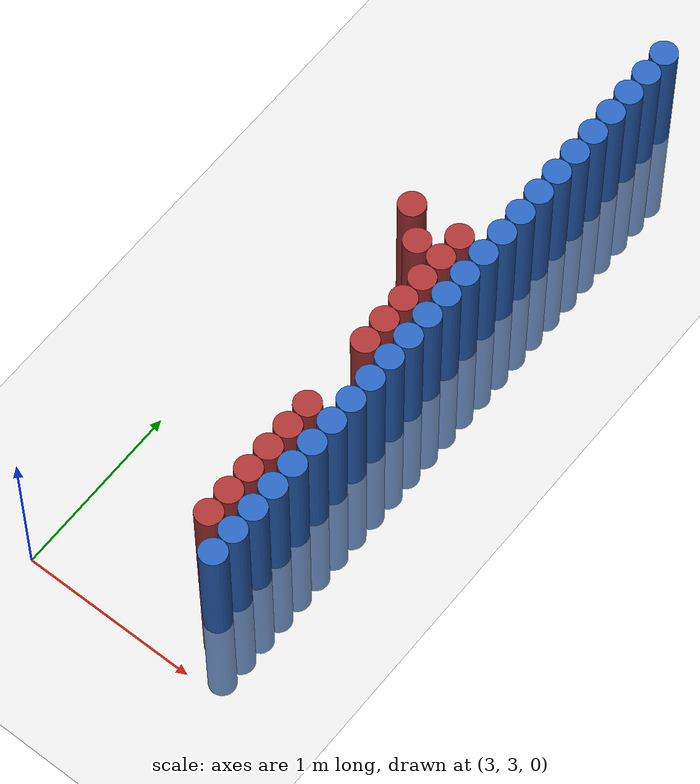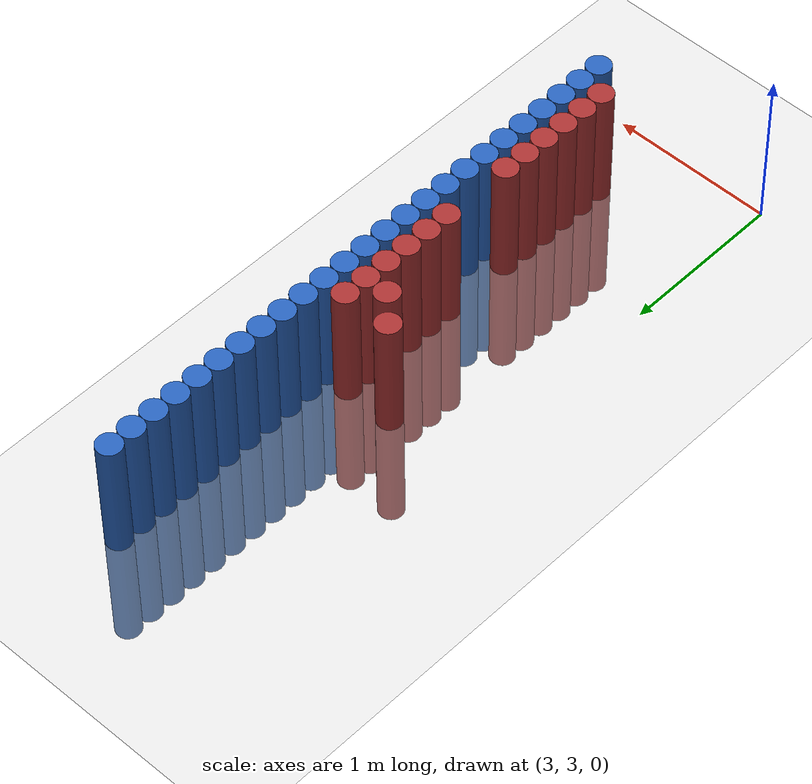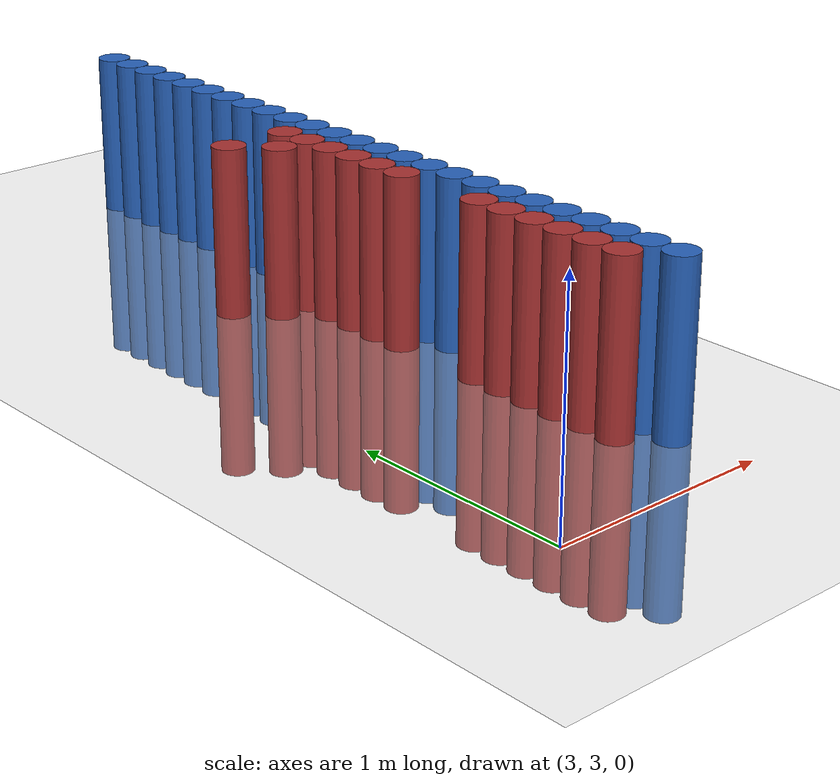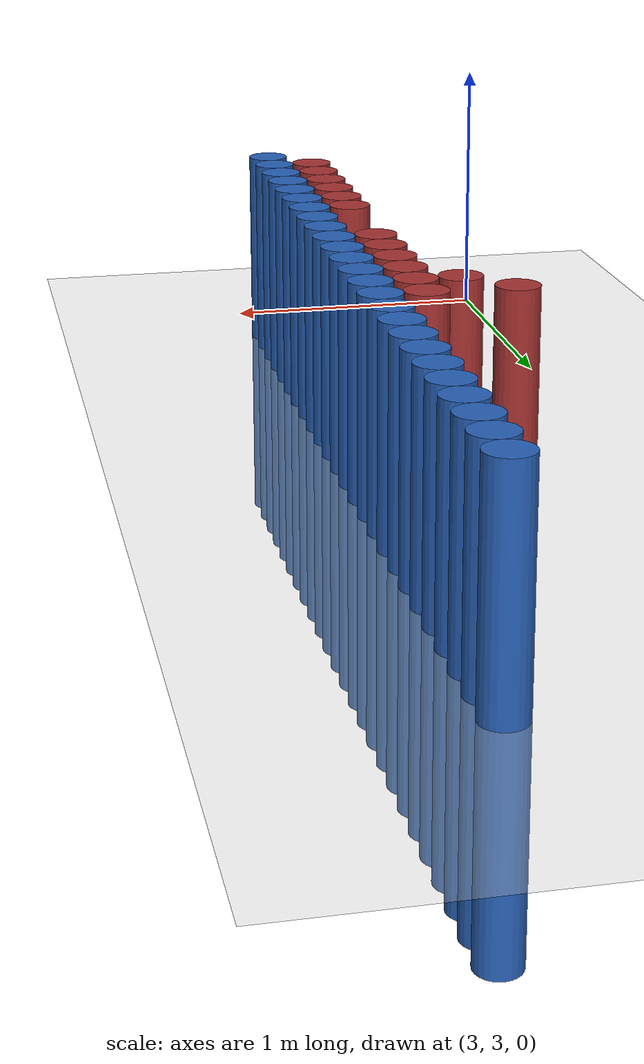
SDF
<sdf version="1.6">
 <world name="default">
  <model name="ground_plane">
   <static>1</static>
   <link name="link">
    <collision name="collision">
     <geometry><plane><normal>0 0 1</normal><size>100 100</size></plane></geometry>
     <surface><friction><ode><mu>100</mu><mu2>50</mu2></ode></friction></surface>
    </collision>
    <visual name="visual">
     <cast_shadows>0</cast_shadows>
     <geometry><plane><normal>0 0 1</normal><size>100 100</size></plane></geometry>
     <material>
      <script><uri>file://media/materials/scripts/gazebo.material</uri><name>Gazebo/Grey</name></script>
     </material>
    </visual>
   </link>
  </model>
  <model name="unit_cylinder_158">
   <static>1</static>
   <pose>3.925000 3.325000 0.000000 0.000000 0.000000 0.000000</pose>
   <link name="link">
    <inertial>
     <mass>1</mass>
     <inertia><ixx>0.145833</ixx><ixy>0</ixy><ixz>0</ixz><iyy>0.145833</iyy><iyz>0</iyz><izz>0.125</izz></inertia>
    </inertial>
    <collision name="collision">
     <geometry><cylinder><radius>0.075000</radius><length>1.5</length></cylinder></geometry>
    </collision>
    <visual name="visual">
     <geometry><cylinder><radius>0.075000</radius><length>1.5</length></cylinder></geometry>
     <material>
      <ambient>0.152000 0.379000 0.720000 1</ambient>
      <diffuse>0.152000 0.379000 0.720000 1</diffuse>
     </material>
     <material>
      <script><name>Gazebo/Grey</name><uri>file://media/materials/scripts/gazebo.material</uri></script>
     </material>
    </visual>
   </link>
  </model>
  <model name="unit_cylinder_160">
   <static>1</static>
   <pose>3.925000 3.475000 0.000000 0.000000 0.000000 0.000000</pose>
   <link name="link">
    <inertial>
     <mass>1</mass>
     <inertia><ixx>0.145833</ixx><ixy>0</ixy><ixz>0</ixz><iyy>0.145833</iyy><iyz>0</iyz><izz>0.125</izz></inertia>
    </inertial>
    <collision name="collision">
     <geometry><cylinder><radius>0.075000</radius><length>1.5</length></cylinder></geometry>
    </collision>
    <visual name="visual">
     <geometry><cylinder><radius>0.075000</radius><length>1.5</length></cylinder></geometry>
     <material>
      <ambient>0.152000 0.379000 0.720000 1</ambient>
      <diffuse>0.152000 0.379000 0.720000 1</diffuse>
     </material>
     <material>
      <script><name>Gazebo/Grey</name><uri>file://media/materials/scripts/gazebo.material</uri></script>
     </material>
    </visual>
   </link>
  </model>
  <model name="unit_cylinder_162">
   <static>1</static>
   <pose>3.925000 3.625000 0.000000 0.000000 0.000000 0.000000</pose>
   <link name="link">
    <inertial>
     <mass>1</mass>
     <inertia><ixx>0.145833</ixx><ixy>0</ixy><ixz>0</ixz><iyy>0.145833</iyy><iyz>0</iyz><izz>0.125</izz></inertia>
    </inertial>
    <collision name="collision">
     <geometry><cylinder><radius>0.075000</radius><length>1.5</length></cylinder></geometry>
    </collision>
    <visual name="visual">
     <geometry><cylinder><radius>0.075000</radius><length>1.5</length></cylinder></geometry>
     <material>
      <ambient>0.152000 0.379000 0.720000 1</ambient>
      <diffuse>0.152000 0.379000 0.720000 1</diffuse>
     </material>
     <material>
      <script><name>Gazebo/Grey</name><uri>file://media/materials/scripts/gazebo.material</uri></script>
     </material>
    </visual>
   </link>
  </model>
  <model name="unit_cylinder_164">
   <static>1</static>
   <pose>3.925000 3.775000 0.000000 0.000000 0.000000 0.000000</pose>
   <link name="link">
    <inertial>
     <mass>1</mass>
     <inertia><ixx>0.145833</ixx><ixy>0</ixy><ixz>0</ixz><iyy>0.145833</iyy><iyz>0</iyz><izz>0.125</izz></inertia>
    </inertial>
    <collision name="collision">
     <geometry><cylinder><radius>0.075000</radius><length>1.5</length></cylinder></geometry>
    </collision>
    <visual name="visual">
     <geometry><cylinder><radius>0.075000</radius><length>1.5</length></cylinder></geometry>
     <material>
      <ambient>0.152000 0.379000 0.720000 1</ambient>
      <diffuse>0.152000 0.379000 0.720000 1</diffuse>
     </material>
     <material>
      <script><name>Gazebo/Grey</name><uri>file://media/materials/scripts/gazebo.material</uri></script>
     </material>
    </visual>
   </link>
  </model>
  <model name="unit_cylinder_166">
   <static>1</static>
   <pose>3.925000 3.925000 0.000000 0.000000 0.000000 0.000000</pose>
   <link name="link">
    <inertial>
     <mass>1</mass>
     <inertia><ixx>0.145833</ixx><ixy>0</ixy><ixz>0</ixz><iyy>0.145833</iyy><iyz>0</iyz><izz>0.125</izz></inertia>
    </inertial>
    <collision name="collision">
     <geometry><cylinder><radius>0.075000</radius><length>1.5</length></cylinder></geometry>
    </collision>
    <visual name="visual">
     <geometry><cylinder><radius>0.075000</radius><length>1.5</length></cylinder></geometry>
     <material>
      <ambient>0.152000 0.379000 0.720000 1</ambient>
      <diffuse>0.152000 0.379000 0.720000 1</diffuse>
     </material>
     <material>
      <script><name>Gazebo/Grey</name><uri>file://media/materials/scripts/gazebo.material</uri></script>
     </material>
    </visual>
   </link>
  </model>
  <model name="unit_cylinder_168">
   <static>1</static>
   <pose>3.925000 4.075000 0.000000 0.000000 0.000000 0.000000</pose>
   <link name="link">
    <inertial>
     <mass>1</mass>
     <inertia><ixx>0.145833</ixx><ixy>0</ixy><ixz>0</ixz><iyy>0.145833</iyy><iyz>0</iyz><izz>0.125</izz></inertia>
    </inertial>
    <collision name="collision">
     <geometry><cylinder><radius>0.075000</radius><length>1.5</length></cylinder></geometry>
    </collision>
    <visual name="visual">
     <geometry><cylinder><radius>0.075000</radius><length>1.5</length></cylinder></geometry>
     <material>
      <ambient>0.152000 0.379000 0.720000 1</ambient>
      <diffuse>0.152000 0.379000 0.720000 1</diffuse>
     </material>
     <material>
      <script><name>Gazebo/Grey</name><uri>file://media/materials/scripts/gazebo.material</uri></script>
     </material>
    </visual>
   </link>
  </model>
  <model name="unit_cylinder_170">
   <static>1</static>
   <pose>3.925000 4.225000 0.000000 0.000000 0.000000 0.000000</pose>
   <link name="link">
    <inertial>
     <mass>1</mass>
     <inertia><ixx>0.145833</ixx><ixy>0</ixy><ixz>0</ixz><iyy>0.145833</iyy><iyz>0</iyz><izz>0.125</izz></inertia>
    </inertial>
    <collision name="collision">
     <geometry><cylinder><radius>0.075000</radius><length>1.5</length></cylinder></geometry>
    </collision>
    <visual name="visual">
     <geometry><cylinder><radius>0.075000</radius><length>1.5</length></cylinder></geometry>
     <material>
      <ambient>0.152000 0.379000 0.720000 1</ambient>
      <diffuse>0.152000 0.379000 0.720000 1</diffuse>
     </material>
     <material>
      <script><name>Gazebo/Grey</name><uri>file://media/materials/scripts/gazebo.material</uri></script>
     </material>
    </visual>
   </link>
  </model>
  <model name="unit_cylinder_172">
   <static>1</static>
   <pose>3.925000 4.375000 0.000000 0.000000 0.000000 0.000000</pose>
   <link name="link">
    <inertial>
     <mass>1</mass>
     <inertia><ixx>0.145833</ixx><ixy>0</ixy><ixz>0</ixz><iyy>0.145833</iyy><iyz>0</iyz><izz>0.125</izz></inertia>
    </inertial>
    <collision name="collision">
     <geometry><cylinder><radius>0.075000</radius><length>1.5</length></cylinder></geometry>
    </collision>
    <visual name="visual">
     <geometry><cylinder><radius>0.075000</radius><length>1.5</length></cylinder></geometry>
     <material>
      <ambient>0.152000 0.379000 0.720000 1</ambient>
      <diffuse>0.152000 0.379000 0.720000 1</diffuse>
     </material>
     <material>
      <script><name>Gazebo/Grey</name><uri>file://media/materials/scripts/gazebo.material</uri></script>
     </material>
    </visual>
   </link>
  </model>
  <model name="unit_cylinder_174">
   <static>1</static>
   <pose>3.925000 4.525000 0.000000 0.000000 0.000000 0.000000</pose>
   <link name="link">
    <inertial>
     <mass>1</mass>
     <inertia><ixx>0.145833</ixx><ixy>0</ixy><ixz>0</ixz><iyy>0.145833</iyy><iyz>0</iyz><izz>0.125</izz></inertia>
    </inertial>
    <collision name="collision">
     <geometry><cylinder><radius>0.075000</radius><length>1.5</length></cylinder></geometry>
    </collision>
    <visual name="visual">
     <geometry><cylinder><radius>0.075000</radius><length>1.5</length></cylinder></geometry>
     <material>
      <ambient>0.152000 0.379000 0.720000 1</ambient>
      <diffuse>0.152000 0.379000 0.720000 1</diffuse>
     </material>
     <material>
      <script><name>Gazebo/Grey</name><uri>file://media/materials/scripts/gazebo.material</uri></script>
     </material>
    </visual>
   </link>
  </model>
  <model name="unit_cylinder_176">
   <static>1</static>
   <pose>3.925000 4.675000 0.000000 0.000000 0.000000 0.000000</pose>
   <link name="link">
    <inertial>
     <mass>1</mass>
     <inertia><ixx>0.145833</ixx><ixy>0</ixy><ixz>0</ixz><iyy>0.145833</iyy><iyz>0</iyz><izz>0.125</izz></inertia>
    </inertial>
    <collision name="collision">
     <geometry><cylinder><radius>0.075000</radius><length>1.5</length></cylinder></geometry>
    </collision>
    <visual name="visual">
     <geometry><cylinder><radius>0.075000</radius><length>1.5</length></cylinder></geometry>
     <material>
      <ambient>0.152000 0.379000 0.720000 1</ambient>
      <diffuse>0.152000 0.379000 0.720000 1</diffuse>
     </material>
     <material>
      <script><name>Gazebo/Grey</name><uri>file://media/materials/scripts/gazebo.material</uri></script>
     </material>
    </visual>
   </link>
  </model>
  <model name="unit_cylinder_178">
   <static>1</static>
   <pose>3.925000 4.825000 0.000000 0.000000 0.000000 0.000000</pose>
   <link name="link">
    <inertial>
     <mass>1</mass>
     <inertia><ixx>0.145833</ixx><ixy>0</ixy><ixz>0</ixz><iyy>0.145833</iyy><iyz>0</iyz><izz>0.125</izz></inertia>
    </inertial>
    <collision name="collision">
     <geometry><cylinder><radius>0.075000</radius><length>1.5</length></cylinder></geometry>
    </collision>
    <visual name="visual">
     <geometry><cylinder><radius>0.075000</radius><length>1.5</length></cylinder></geometry>
     <material>
      <ambient>0.152000 0.379000 0.720000 1</ambient>
      <diffuse>0.152000 0.379000 0.720000 1</diffuse>
     </material>
     <material>
      <script><name>Gazebo/Grey</name><uri>file://media/materials/scripts/gazebo.material</uri></script>
     </material>
    </visual>
   </link>
  </model>
  <model name="unit_cylinder_180">
   <static>1</static>
   <pose>3.925000 4.975000 0.000000 0.000000 0.000000 0.000000</pose>
   <link name="link">
    <inertial>
     <mass>1</mass>
     <inertia><ixx>0.145833</ixx><ixy>0</ixy><ixz>0</ixz><iyy>0.145833</iyy><iyz>0</iyz><izz>0.125</izz></inertia>
    </inertial>
    <collision name="collision">
     <geometry><cylinder><radius>0.075000</radius><length>1.5</length></cylinder></geometry>
    </collision>
    <visual name="visual">
     <geometry><cylinder><radius>0.075000</radius><length>1.5</length></cylinder></geometry>
     <material>
      <ambient>0.152000 0.379000 0.720000 1</ambient>
      <diffuse>0.152000 0.379000 0.720000 1</diffuse>
     </material>
     <material>
      <script><name>Gazebo/Grey</name><uri>file://media/materials/scripts/gazebo.material</uri></script>
     </material>
    </visual>
   </link>
  </model>
  <model name="unit_cylinder_182">
   <static>1</static>
   <pose>3.925000 5.125000 0.000000 0.000000 0.000000 0.000000</pose>
   <link name="link">
    <inertial>
     <mass>1</mass>
     <inertia><ixx>0.145833</ixx><ixy>0</ixy><ixz>0</ixz><iyy>0.145833</iyy><iyz>0</iyz><izz>0.125</izz></inertia>
    </inertial>
    <collision name="collision">
     <geometry><cylinder><radius>0.075000</radius><length>1.5</length></cylinder></geometry>
    </collision>
    <visual name="visual">
     <geometry><cylinder><radius>0.075000</radius><length>1.5</length></cylinder></geometry>
     <material>
      <ambient>0.152000 0.379000 0.720000 1</ambient>
      <diffuse>0.152000 0.379000 0.720000 1</diffuse>
     </material>
     <material>
      <script><name>Gazebo/Grey</name><uri>file://media/materials/scripts/gazebo.material</uri></script>
     </material>
    </visual>
   </link>
  </model>
  <model name="unit_cylinder_184">
   <static>1</static>
   <pose>3.925000 5.275000 0.000000 0.000000 0.000000 0.000000</pose>
   <link name="link">
    <inertial>
     <mass>1</mass>
     <inertia><ixx>0.145833</ixx><ixy>0</ixy><ixz>0</ixz><iyy>0.145833</iyy><iyz>0</iyz><izz>0.125</izz></inertia>
    </inertial>
    <collision name="collision">
     <geometry><cylinder><radius>0.075000</radius><length>1.5</length></cylinder></geometry>
    </collision>
    <visual name="visual">
     <geometry><cylinder><radius>0.075000</radius><length>1.5</length></cylinder></geometry>
     <material>
      <ambient>0.152000 0.379000 0.720000 1</ambient>
      <diffuse>0.152000 0.379000 0.720000 1</diffuse>
     </material>
     <material>
      <script><name>Gazebo/Grey</name><uri>file://media/materials/scripts/gazebo.material</uri></script>
     </material>
    </visual>
   </link>
  </model>
  <model name="unit_cylinder_186">
   <static>1</static>
   <pose>3.925000 5.425000 0.000000 0.000000 0.000000 0.000000</pose>
   <link name="link">
    <inertial>
     <mass>1</mass>
     <inertia><ixx>0.145833</ixx><ixy>0</ixy><ixz>0</ixz><iyy>0.145833</iyy><iyz>0</iyz><izz>0.125</izz></inertia>
    </inertial>
    <collision name="collision">
     <geometry><cylinder><radius>0.075000</radius><length>1.5</length></cylinder></geometry>
    </collision>
    <visual name="visual">
     <geometry><cylinder><radius>0.075000</radius><length>1.5</length></cylinder></geometry>
     <material>
      <ambient>0.152000 0.379000 0.720000 1</ambient>
      <diffuse>0.152000 0.379000 0.720000 1</diffuse>
     </material>
     <material>
      <script><name>Gazebo/Grey</name><uri>file://media/materials/scripts/gazebo.material</uri></script>
     </material>
    </visual>
   </link>
  </model>
  <model name="unit_cylinder_188">
   <static>1</static>
   <pose>3.925000 5.575000 0.000000 0.000000 0.000000 0.000000</pose>
   <link name="link">
    <inertial>
     <mass>1</mass>
     <inertia><ixx>0.145833</ixx><ixy>0</ixy><ixz>0</ixz><iyy>0.145833</iyy><iyz>0</iyz><izz>0.125</izz></inertia>
    </inertial>
    <collision name="collision">
     <geometry><cylinder><radius>0.075000</radius><length>1.5</length></cylinder></geometry>
    </collision>
    <visual name="visual">
     <geometry><cylinder><radius>0.075000</radius><length>1.5</length></cylinder></geometry>
     <material>
      <ambient>0.152000 0.379000 0.720000 1</ambient>
      <diffuse>0.152000 0.379000 0.720000 1</diffuse>
     </material>
     <material>
      <script><name>Gazebo/Grey</name><uri>file://media/materials/scripts/gazebo.material</uri></script>
     </material>
    </visual>
   </link>
  </model>
  <model name="unit_cylinder_190">
   <static>1</static>
   <pose>3.925000 5.725000 0.000000 0.000000 0.000000 0.000000</pose>
   <link name="link">
    <inertial>
     <mass>1</mass>
     <inertia><ixx>0.145833</ixx><ixy>0</ixy><ixz>0</ixz><iyy>0.145833</iyy><iyz>0</iyz><izz>0.125</izz></inertia>
    </inertial>
    <collision name="collision">
     <geometry><cylinder><radius>0.075000</radius><length>1.5</length></cylinder></geometry>
    </collision>
    <visual name="visual">
     <geometry><cylinder><radius>0.075000</radius><length>1.5</length></cylinder></geometry>
     <material>
      <ambient>0.152000 0.379000 0.720000 1</ambient>
      <diffuse>0.152000 0.379000 0.720000 1</diffuse>
     </material>
     <material>
      <script><name>Gazebo/Grey</name><uri>file://media/materials/scripts/gazebo.material</uri></script>
     </material>
    </visual>
   </link>
  </model>
  <model name="unit_cylinder_192">
   <static>1</static>
   <pose>3.925000 5.875000 0.000000 0.000000 0.000000 0.000000</pose>
   <link name="link">
    <inertial>
     <mass>1</mass>
     <inertia><ixx>0.145833</ixx><ixy>0</ixy><ixz>0</ixz><iyy>0.145833</iyy><iyz>0</iyz><izz>0.125</izz></inertia>
    </inertial>
    <collision name="collision">
     <geometry><cylinder><radius>0.075000</radius><length>1.5</length></cylinder></geometry>
    </collision>
    <visual name="visual">
     <geometry><cylinder><radius>0.075000</radius><length>1.5</length></cylinder></geometry>
     <material>
      <ambient>0.152000 0.379000 0.720000 1</ambient>
      <diffuse>0.152000 0.379000 0.720000 1</diffuse>
     </material>
     <material>
      <script><name>Gazebo/Grey</name><uri>file://media/materials/scripts/gazebo.material</uri></script>
     </material>
    </visual>
   </link>
  </model>
  <model name="unit_cylinder_194">
   <static>1</static>
   <pose>3.925000 6.025000 0.000000 0.000000 0.000000 0.000000</pose>
   <link name="link">
    <inertial>
     <mass>1</mass>
     <inertia><ixx>0.145833</ixx><ixy>0</ixy><ixz>0</ixz><iyy>0.145833</iyy><iyz>0</iyz><izz>0.125</izz></inertia>
    </inertial>
    <collision name="collision">
     <geometry><cylinder><radius>0.075000</radius><length>1.5</length></cylinder></geometry>
    </collision>
    <visual name="visual">
     <geometry><cylinder><radius>0.075000</radius><length>1.5</length></cylinder></geometry>
     <material>
      <ambient>0.152000 0.379000 0.720000 1</ambient>
      <diffuse>0.152000 0.379000 0.720000 1</diffuse>
     </material>
     <material>
      <script><name>Gazebo/Grey</name><uri>file://media/materials/scripts/gazebo.material</uri></script>
     </material>
    </visual>
   </link>
  </model>
  <model name="unit_cylinder_196">
   <static>1</static>
   <pose>3.925000 6.175000 0.000000 0.000000 0.000000 0.000000</pose>
   <link name="link">
    <inertial>
     <mass>1</mass>
     <inertia><ixx>0.145833</ixx><ixy>0</ixy><ixz>0</ixz><iyy>0.145833</iyy><iyz>0</iyz><izz>0.125</izz></inertia>
    </inertial>
    <collision name="collision">
     <geometry><cylinder><radius>0.075000</radius><length>1.5</length></cylinder></geometry>
    </collision>
    <visual name="visual">
     <geometry><cylinder><radius>0.075000</radius><length>1.5</length></cylinder></geometry>
     <material>
      <ambient>0.152000 0.379000 0.720000 1</ambient>
      <diffuse>0.152000 0.379000 0.720000 1</diffuse>
     </material>
     <material>
      <script><name>Gazebo/Grey</name><uri>file://media/materials/scripts/gazebo.material</uri></script>
     </material>
    </visual>
   </link>
  </model>
  <model name="unit_cylinder_198">
   <static>1</static>
   <pose>3.925000 6.325000 0.000000 0.000000 0.000000 0.000000</pose>
   <link name="link">
    <inertial>
     <mass>1</mass>
     <inertia><ixx>0.145833</ixx><ixy>0</ixy><ixz>0</ixz><iyy>0.145833</iyy><iyz>0</iyz><izz>0.125</izz></inertia>
    </inertial>
    <collision name="collision">
     <geometry><cylinder><radius>0.075000</radius><length>1.5</length></cylinder></geometry>
    </collision>
    <visual name="visual">
     <geometry><cylinder><radius>0.075000</radius><length>1.5</length></cylinder></geometry>
     <material>
      <ambient>0.152000 0.379000 0.720000 1</ambient>
      <diffuse>0.152000 0.379000 0.720000 1</diffuse>
     </material>
     <material>
      <script><name>Gazebo/Grey</name><uri>file://media/materials/scripts/gazebo.material</uri></script>
     </material>
    </visual>
   </link>
  </model>
  <model name="unit_cylinder_200">
   <static>1</static>
   <pose>3.925000 6.475000 0.000000 0.000000 0.000000 0.000000</pose>
   <link name="link">
    <inertial>
     <mass>1</mass>
     <inertia><ixx>0.145833</ixx><ixy>0</ixy><ixz>0</ixz><iyy>0.145833</iyy><iyz>0</iyz><izz>0.125</izz></inertia>
    </inertial>
    <collision name="collision">
     <geometry><cylinder><radius>0.075000</radius><length>1.5</length></cylinder></geometry>
    </collision>
    <visual name="visual">
     <geometry><cylinder><radius>0.075000</radius><length>1.5</length></cylinder></geometry>
     <material>
      <ambient>0.152000 0.379000 0.720000 1</ambient>
      <diffuse>0.152000 0.379000 0.720000 1</diffuse>
     </material>
     <material>
      <script><name>Gazebo/Grey</name><uri>file://media/materials/scripts/gazebo.material</uri></script>
     </material>
    </visual>
   </link>
  </model>
  <model name="unit_cylinder_202">
   <static>1</static>
   <pose>3.925000 6.625000 0.000000 0.000000 0.000000 0.000000</pose>
   <link name="link">
    <inertial>
     <mass>1</mass>
     <inertia><ixx>0.145833</ixx><ixy>0</ixy><ixz>0</ixz><iyy>0.145833</iyy><iyz>0</iyz><izz>0.125</izz></inertia>
    </inertial>
    <collision name="collision">
     <geometry><cylinder><radius>0.075000</radius><length>1.5</length></cylinder></geometry>
    </collision>
    <visual name="visual">
     <geometry><cylinder><radius>0.075000</radius><length>1.5</length></cylinder></geometry>
     <material>
      <ambient>0.152000 0.379000 0.720000 1</ambient>
      <diffuse>0.152000 0.379000 0.720000 1</diffuse>
     </material>
     <material>
      <script><name>Gazebo/Grey</name><uri>file://media/materials/scripts/gazebo.material</uri></script>
     </material>
    </visual>
   </link>
  </model>
  <model name="unit_cylinder_204">
   <static>1</static>
   <pose>3.925000 6.775000 0.000000 0.000000 0.000000 0.000000</pose>
   <link name="link">
    <inertial>
     <mass>1</mass>
     <inertia><ixx>0.145833</ixx><ixy>0</ixy><ixz>0</ixz><iyy>0.145833</iyy><iyz>0</iyz><izz>0.125</izz></inertia>
    </inertial>
    <collision name="collision">
     <geometry><cylinder><radius>0.075000</radius><length>1.5</length></cylinder></geometry>
    </collision>
    <visual name="visual">
     <geometry><cylinder><radius>0.075000</radius><length>1.5</length></cylinder></geometry>
     <material>
      <ambient>0.152000 0.379000 0.720000 1</ambient>
      <diffuse>0.152000 0.379000 0.720000 1</diffuse>
     </material>
     <material>
      <script><name>Gazebo/Grey</name><uri>file://media/materials/scripts/gazebo.material</uri></script>
     </material>
    </visual>
   </link>
  </model>
  <model name="unit_cylinder_206">
   <static>1</static>
   <pose>3.925000 6.925000 0.000000 0.000000 0.000000 0.000000</pose>
   <link name="link">
    <inertial>
     <mass>1</mass>
     <inertia><ixx>0.145833</ixx><ixy>0</ixy><ixz>0</ixz><iyy>0.145833</iyy><iyz>0</iyz><izz>0.125</izz></inertia>
    </inertial>
    <collision name="collision">
     <geometry><cylinder><radius>0.075000</radius><length>1.5</length></cylinder></geometry>
    </collision>
    <visual name="visual">
     <geometry><cylinder><radius>0.075000</radius><length>1.5</length></cylinder></geometry>
     <material>
      <ambient>0.152000 0.379000 0.720000 1</ambient>
      <diffuse>0.152000 0.379000 0.720000 1</diffuse>
     </material>
     <material>
      <script><name>Gazebo/Grey</name><uri>file://media/materials/scripts/gazebo.material</uri></script>
     </material>
    </visual>
   </link>
  </model>
  <model name="unit_cylinder_603">
   <static>1</static>
   <pose>3.475000 5.425000 0.000000 0.000000 0.000000 0.000000</pose>
   <link name="link">
    <inertial>
     <mass>1</mass>
     <inertia><ixx>0.145833</ixx><ixy>0</ixy><ixz>0</ixz><iyy>0.145833</iyy><iyz>0</iyz><izz>0.125</izz></inertia>
    </inertial>
    <collision name="collision">
     <geometry><cylinder><radius>0.075000</radius><length>1.5</length></cylinder></geometry>
    </collision>
    <visual name="visual">
     <geometry><cylinder><radius>0.075000</radius><length>1.5</length></cylinder></geometry>
     <material>
      <ambient>0.648000 0.192000 0.192000 1</ambient>
      <diffuse>0.648000 0.192000 0.192000 1</diffuse>
     </material>
     <material>
      <script><name>Gazebo/Grey</name><uri>file://media/materials/scripts/gazebo.material</uri></script>
     </material>
    </visual>
   </link>
  </model>
  <model name="unit_cylinder_610">
   <static>1</static>
   <pose>3.625000 5.275000 0.000000 0.000000 0.000000 0.000000</pose>
   <link name="link">
    <inertial>
     <mass>1</mass>
     <inertia><ixx>0.145833</ixx><ixy>0</ixy><ixz>0</ixz><iyy>0.145833</iyy><iyz>0</iyz><izz>0.125</izz></inertia>
    </inertial>
    <collision name="collision">
     <geometry><cylinder><radius>0.075000</radius><length>1.5</length></cylinder></geometry>
    </collision>
    <visual name="visual">
     <geometry><cylinder><radius>0.075000</radius><length>1.5</length></cylinder></geometry>
     <material>
      <ambient>0.648000 0.192000 0.192000 1</ambient>
      <diffuse>0.648000 0.192000 0.192000 1</diffuse>
     </material>
     <material>
      <script><name>Gazebo/Grey</name><uri>file://media/materials/scripts/gazebo.material</uri></script>
     </material>
    </visual>
   </link>
  </model>
  <model name="unit_cylinder_628">
   <static>1</static>
   <pose>3.775000 3.475000 0.000000 0.000000 0.000000 0.000000</pose>
   <link name="link">
    <inertial>
     <mass>1</mass>
     <inertia><ixx>0.145833</ixx><ixy>0</ixy><ixz>0</ixz><iyy>0.145833</iyy><iyz>0</iyz><izz>0.125</izz></inertia>
    </inertial>
    <collision name="collision">
     <geometry><cylinder><radius>0.075000</radius><length>1.5</length></cylinder></geometry>
    </collision>
    <visual name="visual">
     <geometry><cylinder><radius>0.075000</radius><length>1.5</length></cylinder></geometry>
     <material>
      <ambient>0.648000 0.192000 0.192000 1</ambient>
      <diffuse>0.648000 0.192000 0.192000 1</diffuse>
     </material>
     <material>
      <script><name>Gazebo/Grey</name><uri>file://media/materials/scripts/gazebo.material</uri></script>
     </material>
    </visual>
   </link>
  </model>
  <model name="unit_cylinder_629">
   <static>1</static>
   <pose>3.775000 3.625000 0.000000 0.000000 0.000000 0.000000</pose>
   <link name="link">
    <inertial>
     <mass>1</mass>
     <inertia><ixx>0.145833</ixx><ixy>0</ixy><ixz>0</ixz><iyy>0.145833</iyy><iyz>0</iyz><izz>0.125</izz></inertia>
    </inertial>
    <collision name="collision">
     <geometry><cylinder><radius>0.075000</radius><length>1.5</length></cylinder></geometry>
    </collision>
    <visual name="visual">
     <geometry><cylinder><radius>0.075000</radius><length>1.5</length></cylinder></geometry>
     <material>
      <ambient>0.648000 0.192000 0.192000 1</ambient>
      <diffuse>0.648000 0.192000 0.192000 1</diffuse>
     </material>
     <material>
      <script><name>Gazebo/Grey</name><uri>file://media/materials/scripts/gazebo.material</uri></script>
     </material>
    </visual>
   </link>
  </model>
  <model name="unit_cylinder_630">
   <static>1</static>
   <pose>3.775000 3.775000 0.000000 0.000000 0.000000 0.000000</pose>
   <link name="link">
    <inertial>
     <mass>1</mass>
     <inertia><ixx>0.145833</ixx><ixy>0</ixy><ixz>0</ixz><iyy>0.145833</iyy><iyz>0</iyz><izz>0.125</izz></inertia>
    </inertial>
    <collision name="collision">
     <geometry><cylinder><radius>0.075000</radius><length>1.5</length></cylinder></geometry>
    </collision>
    <visual name="visual">
     <geometry><cylinder><radius>0.075000</radius><length>1.5</length></cylinder></geometry>
     <material>
      <ambient>0.648000 0.192000 0.192000 1</ambient>
      <diffuse>0.648000 0.192000 0.192000 1</diffuse>
     </material>
     <material>
      <script><name>Gazebo/Grey</name><uri>file://media/materials/scripts/gazebo.material</uri></script>
     </material>
    </visual>
   </link>
  </model>
  <model name="unit_cylinder_631">
   <static>1</static>
   <pose>3.775000 3.925000 0.000000 0.000000 0.000000 0.000000</pose>
   <link name="link">
    <inertial>
     <mass>1</mass>
     <inertia><ixx>0.145833</ixx><ixy>0</ixy><ixz>0</ixz><iyy>0.145833</iyy><iyz>0</iyz><izz>0.125</izz></inertia>
    </inertial>
    <collision name="collision">
     <geometry><cylinder><radius>0.075000</radius><length>1.5</length></cylinder></geometry>
    </collision>
    <visual name="visual">
     <geometry><cylinder><radius>0.075000</radius><length>1.5</length></cylinder></geometry>
     <material>
      <ambient>0.648000 0.192000 0.192000 1</ambient>
      <diffuse>0.648000 0.192000 0.192000 1</diffuse>
     </material>
     <material>
      <script><name>Gazebo/Grey</name><uri>file://media/materials/scripts/gazebo.material</uri></script>
     </material>
    </visual>
   </link>
  </model>
  <model name="unit_cylinder_632">
   <static>1</static>
   <pose>3.775000 4.075000 0.000000 0.000000 0.000000 0.000000</pose>
   <link name="link">
    <inertial>
     <mass>1</mass>
     <inertia><ixx>0.145833</ixx><ixy>0</ixy><ixz>0</ixz><iyy>0.145833</iyy><iyz>0</iyz><izz>0.125</izz></inertia>
    </inertial>
    <collision name="collision">
     <geometry><cylinder><radius>0.075000</radius><length>1.5</length></cylinder></geometry>
    </collision>
    <visual name="visual">
     <geometry><cylinder><radius>0.075000</radius><length>1.5</length></cylinder></geometry>
     <material>
      <ambient>0.648000 0.192000 0.192000 1</ambient>
      <diffuse>0.648000 0.192000 0.192000 1</diffuse>
     </material>
     <material>
      <script><name>Gazebo/Grey</name><uri>file://media/materials/scripts/gazebo.material</uri></script>
     </material>
    </visual>
   </link>
  </model>
  <model name="unit_cylinder_633">
   <static>1</static>
   <pose>3.775000 4.225000 0.000000 0.000000 0.000000 0.000000</pose>
   <link name="link">
    <inertial>
     <mass>1</mass>
     <inertia><ixx>0.145833</ixx><ixy>0</ixy><ixz>0</ixz><iyy>0.145833</iyy><iyz>0</iyz><izz>0.125</izz></inertia>
    </inertial>
    <collision name="collision">
     <geometry><cylinder><radius>0.075000</radius><length>1.5</length></cylinder></geometry>
    </collision>
    <visual name="visual">
     <geometry><cylinder><radius>0.075000</radius><length>1.5</length></cylinder></geometry>
     <material>
      <ambient>0.648000 0.192000 0.192000 1</ambient>
      <diffuse>0.648000 0.192000 0.192000 1</diffuse>
     </material>
     <material>
      <script><name>Gazebo/Grey</name><uri>file://media/materials/scripts/gazebo.material</uri></script>
     </material>
    </visual>
   </link>
  </model>
  <model name="unit_cylinder_634">
   <static>1</static>
   <pose>3.775000 4.675000 0.000000 0.000000 0.000000 0.000000</pose>
   <link name="link">
    <inertial>
     <mass>1</mass>
     <inertia><ixx>0.145833</ixx><ixy>0</ixy><ixz>0</ixz><iyy>0.145833</iyy><iyz>0</iyz><izz>0.125</izz></inertia>
    </inertial>
    <collision name="collision">
     <geometry><cylinder><radius>0.075000</radius><length>1.5</length></cylinder></geometry>
    </collision>
    <visual name="visual">
     <geometry><cylinder><radius>0.075000</radius><length>1.5</length></cylinder></geometry>
     <material>
      <ambient>0.648000 0.192000 0.192000 1</ambient>
      <diffuse>0.648000 0.192000 0.192000 1</diffuse>
     </material>
     <material>
      <script><name>Gazebo/Grey</name><uri>file://media/materials/scripts/gazebo.material</uri></script>
     </material>
    </visual>
   </link>
  </model>
  <model name="unit_cylinder_635">
   <static>1</static>
   <pose>3.775000 4.825000 0.000000 0.000000 0.000000 0.000000</pose>
   <link name="link">
    <inertial>
     <mass>1</mass>
     <inertia><ixx>0.145833</ixx><ixy>0</ixy><ixz>0</ixz><iyy>0.145833</iyy><iyz>0</iyz><izz>0.125</izz></inertia>
    </inertial>
    <collision name="collision">
     <geometry><cylinder><radius>0.075000</radius><length>1.5</length></cylinder></geometry>
    </collision>
    <visual name="visual">
     <geometry><cylinder><radius>0.075000</radius><length>1.5</length></cylinder></geometry>
     <material>
      <ambient>0.648000 0.192000 0.192000 1</ambient>
      <diffuse>0.648000 0.192000 0.192000 1</diffuse>
     </material>
     <material>
      <script><name>Gazebo/Grey</name><uri>file://media/materials/scripts/gazebo.material</uri></script>
     </material>
    </visual>
   </link>
  </model>
  <model name="unit_cylinder_636">
   <static>1</static>
   <pose>3.775000 4.975000 0.000000 0.000000 0.000000 0.000000</pose>
   <link name="link">
    <inertial>
     <mass>1</mass>
     <inertia><ixx>0.145833</ixx><ixy>0</ixy><ixz>0</ixz><iyy>0.145833</iyy><iyz>0</iyz><izz>0.125</izz></inertia>
    </inertial>
    <collision name="collision">
     <geometry><cylinder><radius>0.075000</radius><length>1.5</length></cylinder></geometry>
    </collision>
    <visual name="visual">
     <geometry><cylinder><radius>0.075000</radius><length>1.5</length></cylinder></geometry>
     <material>
      <ambient>0.648000 0.192000 0.192000 1</ambient>
      <diffuse>0.648000 0.192000 0.192000 1</diffuse>
     </material>
     <material>
      <script><name>Gazebo/Grey</name><uri>file://media/materials/scripts/gazebo.material</uri></script>
     </material>
    </visual>
   </link>
  </model>
  <model name="unit_cylinder_637">
   <static>1</static>
   <pose>3.775000 5.125000 0.000000 0.000000 0.000000 0.000000</pose>
   <link name="link">
    <inertial>
     <mass>1</mass>
     <inertia><ixx>0.145833</ixx><ixy>0</ixy><ixz>0</ixz><iyy>0.145833</iyy><iyz>0</iyz><izz>0.125</izz></inertia>
    </inertial>
    <collision name="collision">
     <geometry><cylinder><radius>0.075000</radius><length>1.5</length></cylinder></geometry>
    </collision>
    <visual name="visual">
     <geometry><cylinder><radius>0.075000</radius><length>1.5</length></cylinder></geometry>
     <material>
      <ambient>0.648000 0.192000 0.192000 1</ambient>
      <diffuse>0.648000 0.192000 0.192000 1</diffuse>
     </material>
     <material>
      <script><name>Gazebo/Grey</name><uri>file://media/materials/scripts/gazebo.material</uri></script>
     </material>
    </visual>
   </link>
  </model>
  <model name="unit_cylinder_638">
   <static>1</static>
   <pose>3.775000 5.275000 0.000000 0.000000 0.000000 0.000000</pose>
   <link name="link">
    <inertial>
     <mass>1</mass>
     <inertia><ixx>0.145833</ixx><ixy>0</ixy><ixz>0</ixz><iyy>0.145833</iyy><iyz>0</iyz><izz>0.125</izz></inertia>
    </inertial>
    <collision name="collision">
     <geometry><cylinder><radius>0.075000</radius><length>1.5</length></cylinder></geometry>
    </collision>
    <visual name="visual">
     <geometry><cylinder><radius>0.075000</radius><length>1.5</length></cylinder></geometry>
     <material>
      <ambient>0.648000 0.192000 0.192000 1</ambient>
      <diffuse>0.648000 0.192000 0.192000 1</diffuse>
     </material>
     <material>
      <script><name>Gazebo/Grey</name><uri>file://media/materials/scripts/gazebo.material</uri></script>
     </material>
    </visual>
   </link>
  </model>
  <model name="unit_cylinder_639">
   <static>1</static>
   <pose>3.775000 5.425000 0.000000 0.000000 0.000000 0.000000</pose>
   <link name="link">
    <inertial>
     <mass>1</mass>
     <inertia><ixx>0.145833</ixx><ixy>0</ixy><ixz>0</ixz><iyy>0.145833</iyy><iyz>0</iyz><izz>0.125</izz></inertia>
    </inertial>
    <collision name="collision">
     <geometry><cylinder><radius>0.075000</radius><length>1.5</length></cylinder></geometry>
    </collision>
    <visual name="visual">
     <geometry><cylinder><radius>0.075000</radius><length>1.5</length></cylinder></geometry>
     <material>
      <ambient>0.648000 0.192000 0.192000 1</ambient>
      <diffuse>0.648000 0.192000 0.192000 1</diffuse>
     </material>
     <material>
      <script><name>Gazebo/Grey</name><uri>file://media/materials/scripts/gazebo.material</uri></script>
     </material>
    </visual>
   </link>
  </model>
  <model name="unit_cylinder_675">
   <static>1</static>
   <pose>3.925000 3.325000 0.000000 0.000000 0.000000 0.000000</pose>
   <link name="link">
    <inertial>
     <mass>1</mass>
     <inertia><ixx>0.145833</ixx><ixy>0</ixy><ixz>0</ixz><iyy>0.145833</iyy><iyz>0</iyz><izz>0.125</izz></inertia>
    </inertial>
    <collision name="collision">
     <geometry><cylinder><radius>0.075000</radius><length>1.5</length></cylinder></geometry>
    </collision>
    <visual name="visual">
     <geometry><cylinder><radius>0.075000</radius><length>1.5</length></cylinder></geometry>
     <material>
      <ambient>0.152000 0.379000 0.720000 1</ambient>
      <diffuse>0.152000 0.379000 0.720000 1</diffuse>
     </material>
     <material>
      <script><name>Gazebo/Grey</name><uri>file://media/materials/scripts/gazebo.material</uri></script>
     </material>
    </visual>
   </link>
  </model>
  <model name="unit_cylinder_676">
   <static>1</static>
   <pose>3.925000 3.475000 0.000000 0.000000 0.000000 0.000000</pose>
   <link name="link">
    <inertial>
     <mass>1</mass>
     <inertia><ixx>0.145833</ixx><ixy>0</ixy><ixz>0</ixz><iyy>0.145833</iyy><iyz>0</iyz><izz>0.125</izz></inertia>
    </inertial>
    <collision name="collision">
     <geometry><cylinder><radius>0.075000</radius><length>1.5</length></cylinder></geometry>
    </collision>
    <visual name="visual">
     <geometry><cylinder><radius>0.075000</radius><length>1.5</length></cylinder></geometry>
     <material>
      <ambient>0.152000 0.379000 0.720000 1</ambient>
      <diffuse>0.152000 0.379000 0.720000 1</diffuse>
     </material>
     <material>
      <script><name>Gazebo/Grey</name><uri>file://media/materials/scripts/gazebo.material</uri></script>
     </material>
    </visual>
   </link>
  </model>
  <model name="unit_cylinder_677">
   <static>1</static>
   <pose>3.925000 3.625000 0.000000 0.000000 0.000000 0.000000</pose>
   <link name="link">
    <inertial>
     <mass>1</mass>
     <inertia><ixx>0.145833</ixx><ixy>0</ixy><ixz>0</ixz><iyy>0.145833</iyy><iyz>0</iyz><izz>0.125</izz></inertia>
    </inertial>
    <collision name="collision">
     <geometry><cylinder><radius>0.075000</radius><length>1.5</length></cylinder></geometry>
    </collision>
    <visual name="visual">
     <geometry><cylinder><radius>0.075000</radius><length>1.5</length></cylinder></geometry>
     <material>
      <ambient>0.152000 0.379000 0.720000 1</ambient>
      <diffuse>0.152000 0.379000 0.720000 1</diffuse>
     </material>
     <material>
      <script><name>Gazebo/Grey</name><uri>file://media/materials/scripts/gazebo.material</uri></script>
     </material>
    </visual>
   </link>
  </model>
  <model name="unit_cylinder_678">
   <static>1</static>
   <pose>3.925000 3.775000 0.000000 0.000000 0.000000 0.000000</pose>
   <link name="link">
    <inertial>
     <mass>1</mass>
     <inertia><ixx>0.145833</ixx><ixy>0</ixy><ixz>0</ixz><iyy>0.145833</iyy><iyz>0</iyz><izz>0.125</izz></inertia>
    </inertial>
    <collision name="collision">
     <geometry><cylinder><radius>0.075000</radius><length>1.5</length></cylinder></geometry>
    </collision>
    <visual name="visual">
     <geometry><cylinder><radius>0.075000</radius><length>1.5</length></cylinder></geometry>
     <material>
      <ambient>0.152000 0.379000 0.720000 1</ambient>
      <diffuse>0.152000 0.379000 0.720000 1</diffuse>
     </material>
     <material>
      <script><name>Gazebo/Grey</name><uri>file://media/materials/scripts/gazebo.material</uri></script>
     </material>
    </visual>
   </link>
  </model>
  <model name="unit_cylinder_679">
   <static>1</static>
   <pose>3.925000 3.925000 0.000000 0.000000 0.000000 0.000000</pose>
   <link name="link">
    <inertial>
     <mass>1</mass>
     <inertia><ixx>0.145833</ixx><ixy>0</ixy><ixz>0</ixz><iyy>0.145833</iyy><iyz>0</iyz><izz>0.125</izz></inertia>
    </inertial>
    <collision name="collision">
     <geometry><cylinder><radius>0.075000</radius><length>1.5</length></cylinder></geometry>
    </collision>
    <visual name="visual">
     <geometry><cylinder><radius>0.075000</radius><length>1.5</length></cylinder></geometry>
     <material>
      <ambient>0.152000 0.379000 0.720000 1</ambient>
      <diffuse>0.152000 0.379000 0.720000 1</diffuse>
     </material>
     <material>
      <script><name>Gazebo/Grey</name><uri>file://media/materials/scripts/gazebo.material</uri></script>
     </material>
    </visual>
   </link>
  </model>
  <model name="unit_cylinder_680">
   <static>1</static>
   <pose>3.925000 4.075000 0.000000 0.000000 0.000000 0.000000</pose>
   <link name="link">
    <inertial>
     <mass>1</mass>
     <inertia><ixx>0.145833</ixx><ixy>0</ixy><ixz>0</ixz><iyy>0.145833</iyy><iyz>0</iyz><izz>0.125</izz></inertia>
    </inertial>
    <collision name="collision">
     <geometry><cylinder><radius>0.075000</radius><length>1.5</length></cylinder></geometry>
    </collision>
    <visual name="visual">
     <geometry><cylinder><radius>0.075000</radius><length>1.5</length></cylinder></geometry>
     <material>
      <ambient>0.152000 0.379000 0.720000 1</ambient>
      <diffuse>0.152000 0.379000 0.720000 1</diffuse>
     </material>
     <material>
      <script><name>Gazebo/Grey</name><uri>file://media/materials/scripts/gazebo.material</uri></script>
     </material>
    </visual>
   </link>
  </model>
  <model name="unit_cylinder_681">
   <static>1</static>
   <pose>3.925000 4.225000 0.000000 0.000000 0.000000 0.000000</pose>
   <link name="link">
    <inertial>
     <mass>1</mass>
     <inertia><ixx>0.145833</ixx><ixy>0</ixy><ixz>0</ixz><iyy>0.145833</iyy><iyz>0</iyz><izz>0.125</izz></inertia>
    </inertial>
    <collision name="collision">
     <geometry><cylinder><radius>0.075000</radius><length>1.5</length></cylinder></geometry>
    </collision>
    <visual name="visual">
     <geometry><cylinder><radius>0.075000</radius><length>1.5</length></cylinder></geometry>
     <material>
      <ambient>0.152000 0.379000 0.720000 1</ambient>
      <diffuse>0.152000 0.379000 0.720000 1</diffuse>
     </material>
     <material>
      <script><name>Gazebo/Grey</name><uri>file://media/materials/scripts/gazebo.material</uri></script>
     </material>
    </visual>
   </link>
  </model>
  <model name="unit_cylinder_682">
   <static>1</static>
   <pose>3.925000 4.375000 0.000000 0.000000 0.000000 0.000000</pose>
   <link name="link">
    <inertial>
     <mass>1</mass>
     <inertia><ixx>0.145833</ixx><ixy>0</ixy><ixz>0</ixz><iyy>0.145833</iyy><iyz>0</iyz><izz>0.125</izz></inertia>
    </inertial>
    <collision name="collision">
     <geometry><cylinder><radius>0.075000</radius><length>1.5</length></cylinder></geometry>
    </collision>
    <visual name="visual">
     <geometry><cylinder><radius>0.075000</radius><length>1.5</length></cylinder></geometry>
     <material>
      <ambient>0.152000 0.379000 0.720000 1</ambient>
      <diffuse>0.152000 0.379000 0.720000 1</diffuse>
     </material>
     <material>
      <script><name>Gazebo/Grey</name><uri>file://media/materials/scripts/gazebo.material</uri></script>
     </material>
    </visual>
   </link>
  </model>
  <model name="unit_cylinder_683">
   <static>1</static>
   <pose>3.925000 4.525000 0.000000 0.000000 0.000000 0.000000</pose>
   <link name="link">
    <inertial>
     <mass>1</mass>
     <inertia><ixx>0.145833</ixx><ixy>0</ixy><ixz>0</ixz><iyy>0.145833</iyy><iyz>0</iyz><izz>0.125</izz></inertia>
    </inertial>
    <collision name="collision">
     <geometry><cylinder><radius>0.075000</radius><length>1.5</length></cylinder></geometry>
    </collision>
    <visual name="visual">
     <geometry><cylinder><radius>0.075000</radius><length>1.5</length></cylinder></geometry>
     <material>
      <ambient>0.152000 0.379000 0.720000 1</ambient>
      <diffuse>0.152000 0.379000 0.720000 1</diffuse>
     </material>
     <material>
      <script><name>Gazebo/Grey</name><uri>file://media/materials/scripts/gazebo.material</uri></script>
     </material>
    </visual>
   </link>
  </model>
  <model name="unit_cylinder_684">
   <static>1</static>
   <pose>3.925000 4.675000 0.000000 0.000000 0.000000 0.000000</pose>
   <link name="link">
    <inertial>
     <mass>1</mass>
     <inertia><ixx>0.145833</ixx><ixy>0</ixy><ixz>0</ixz><iyy>0.145833</iyy><iyz>0</iyz><izz>0.125</izz></inertia>
    </inertial>
    <collision name="collision">
     <geometry><cylinder><radius>0.075000</radius><length>1.5</length></cylinder></geometry>
    </collision>
    <visual name="visual">
     <geometry><cylinder><radius>0.075000</radius><length>1.5</length></cylinder></geometry>
     <material>
      <ambient>0.152000 0.379000 0.720000 1</ambient>
      <diffuse>0.152000 0.379000 0.720000 1</diffuse>
     </material>
     <material>
      <script><name>Gazebo/Grey</name><uri>file://media/materials/scripts/gazebo.material</uri></script>
     </material>
    </visual>
   </link>
  </model>
  <model name="unit_cylinder_685">
   <static>1</static>
   <pose>3.925000 4.825000 0.000000 0.000000 0.000000 0.000000</pose>
   <link name="link">
    <inertial>
     <mass>1</mass>
     <inertia><ixx>0.145833</ixx><ixy>0</ixy><ixz>0</ixz><iyy>0.145833</iyy><iyz>0</iyz><izz>0.125</izz></inertia>
    </inertial>
    <collision name="collision">
     <geometry><cylinder><radius>0.075000</radius><length>1.5</length></cylinder></geometry>
    </collision>
    <visual name="visual">
     <geometry><cylinder><radius>0.075000</radius><length>1.5</length></cylinder></geometry>
     <material>
      <ambient>0.152000 0.379000 0.720000 1</ambient>
      <diffuse>0.152000 0.379000 0.720000 1</diffuse>
     </material>
     <material>
      <script><name>Gazebo/Grey</name><uri>file://media/materials/scripts/gazebo.material</uri></script>
     </material>
    </visual>
   </link>
  </model>
  <model name="unit_cylinder_686">
   <static>1</static>
   <pose>3.925000 4.975000 0.000000 0.000000 0.000000 0.000000</pose>
   <link name="link">
    <inertial>
     <mass>1</mass>
     <inertia><ixx>0.145833</ixx><ixy>0</ixy><ixz>0</ixz><iyy>0.145833</iyy><iyz>0</iyz><izz>0.125</izz></inertia>
    </inertial>
    <collision name="collision">
     <geometry><cylinder><radius>0.075000</radius><length>1.5</length></cylinder></geometry>
    </collision>
    <visual name="visual">
     <geometry><cylinder><radius>0.075000</radius><length>1.5</length></cylinder></geometry>
     <material>
      <ambient>0.152000 0.379000 0.720000 1</ambient>
      <diffuse>0.152000 0.379000 0.720000 1</diffuse>
     </material>
     <material>
      <script><name>Gazebo/Grey</name><uri>file://media/materials/scripts/gazebo.material</uri></script>
     </material>
    </visual>
   </link>
  </model>
  <model name="unit_cylinder_687">
   <static>1</static>
   <pose>3.925000 5.125000 0.000000 0.000000 0.000000 0.000000</pose>
   <link name="link">
    <inertial>
     <mass>1</mass>
     <inertia><ixx>0.145833</ixx><ixy>0</ixy><ixz>0</ixz><iyy>0.145833</iyy><iyz>0</iyz><izz>0.125</izz></inertia>
    </inertial>
    <collision name="collision">
     <geometry><cylinder><radius>0.075000</radius><length>1.5</length></cylinder></geometry>
    </collision>
    <visual name="visual">
     <geometry><cylinder><radius>0.075000</radius><length>1.5</length></cylinder></geometry>
     <material>
      <ambient>0.152000 0.379000 0.720000 1</ambient>
      <diffuse>0.152000 0.379000 0.720000 1</diffuse>
     </material>
     <material>
      <script><name>Gazebo/Grey</name><uri>file://media/materials/scripts/gazebo.material</uri></script>
     </material>
    </visual>
   </link>
  </model>
  <model name="unit_cylinder_688">
   <static>1</static>
   <pose>3.925000 5.275000 0.000000 0.000000 0.000000 0.000000</pose>
   <link name="link">
    <inertial>
     <mass>1</mass>
     <inertia><ixx>0.145833</ixx><ixy>0</ixy><ixz>0</ixz><iyy>0.145833</iyy><iyz>0</iyz><izz>0.125</izz></inertia>
    </inertial>
    <collision name="collision">
     <geometry><cylinder><radius>0.075000</radius><length>1.5</length></cylinder></geometry>
    </collision>
    <visual name="visual">
     <geometry><cylinder><radius>0.075000</radius><length>1.5</length></cylinder></geometry>
     <material>
      <ambient>0.152000 0.379000 0.720000 1</ambient>
      <diffuse>0.152000 0.379000 0.720000 1</diffuse>
     </material>
     <material>
      <script><name>Gazebo/Grey</name><uri>file://media/materials/scripts/gazebo.material</uri></script>
     </material>
    </visual>
   </link>
  </model>
  <model name="unit_cylinder_689">
   <static>1</static>
   <pose>3.925000 5.425000 0.000000 0.000000 0.000000 0.000000</pose>
   <link name="link">
    <inertial>
     <mass>1</mass>
     <inertia><ixx>0.145833</ixx><ixy>0</ixy><ixz>0</ixz><iyy>0.145833</iyy><iyz>0</iyz><izz>0.125</izz></inertia>
    </inertial>
    <collision name="collision">
     <geometry><cylinder><radius>0.075000</radius><length>1.5</length></cylinder></geometry>
    </collision>
    <visual name="visual">
     <geometry><cylinder><radius>0.075000</radius><length>1.5</length></cylinder></geometry>
     <material>
      <ambient>0.152000 0.379000 0.720000 1</ambient>
      <diffuse>0.152000 0.379000 0.720000 1</diffuse>
     </material>
     <material>
      <script><name>Gazebo/Grey</name><uri>file://media/materials/scripts/gazebo.material</uri></script>
     </material>
    </visual>
   </link>
  </model>
 </world>
</sdf>
